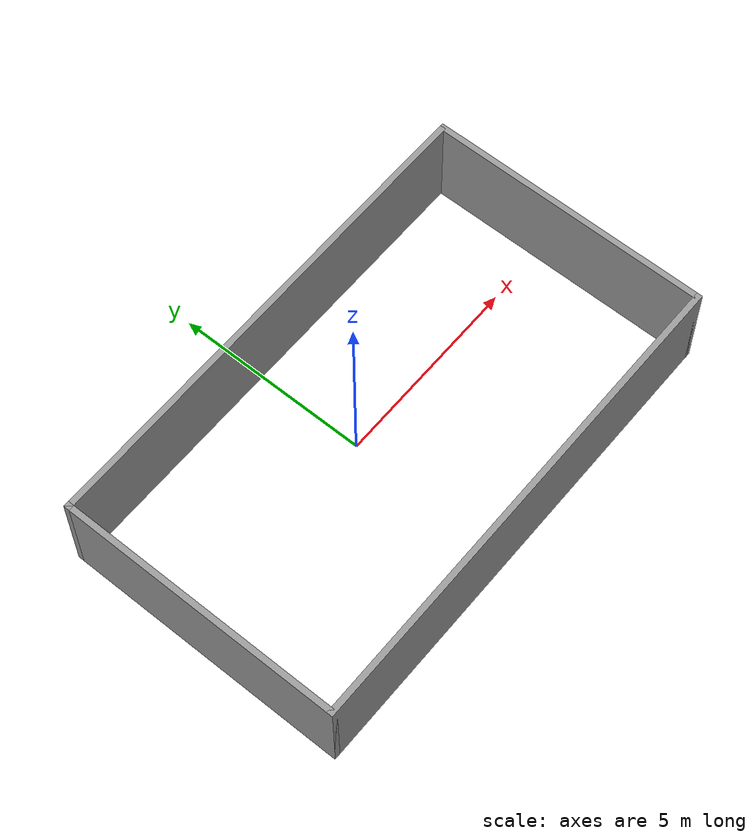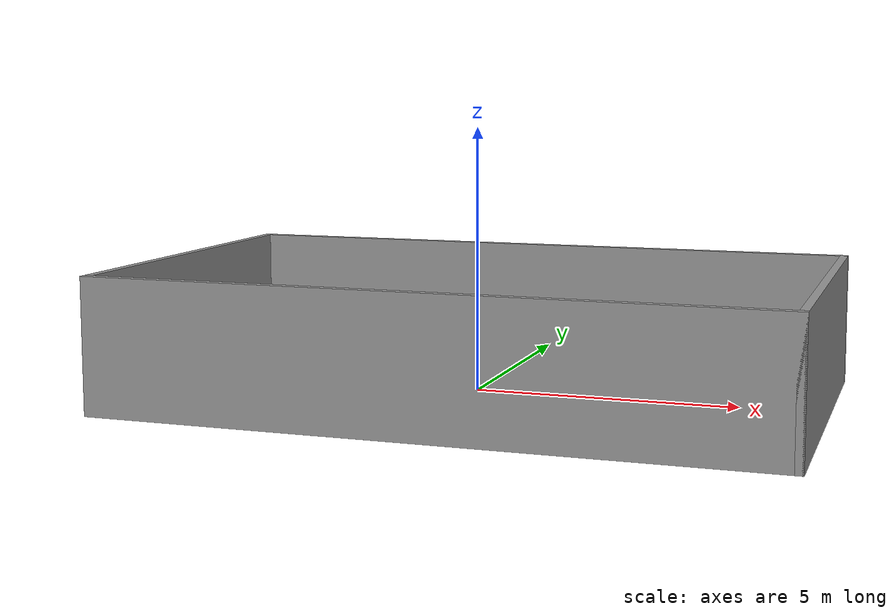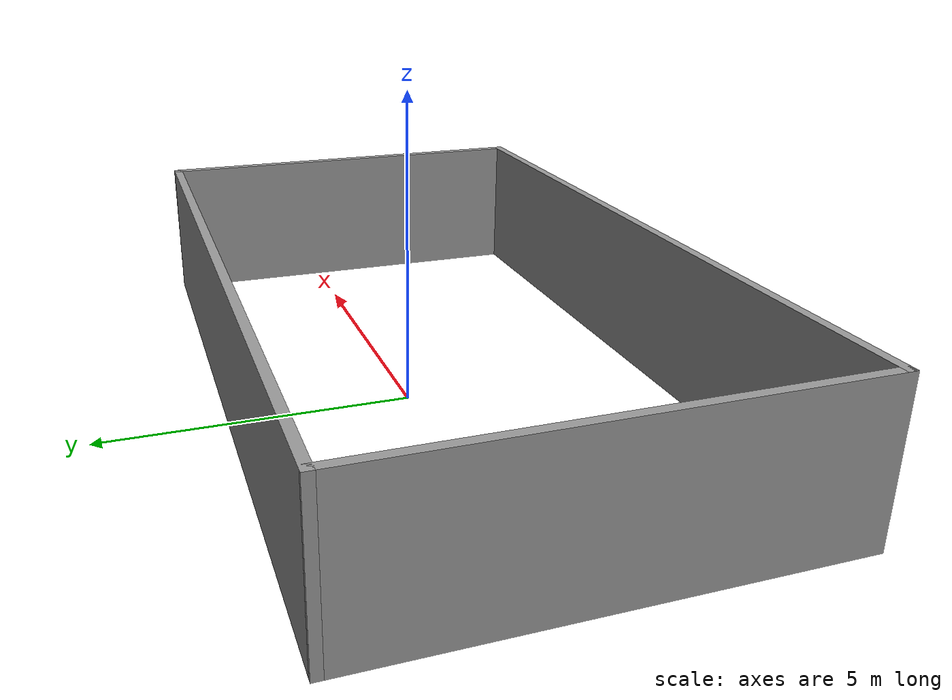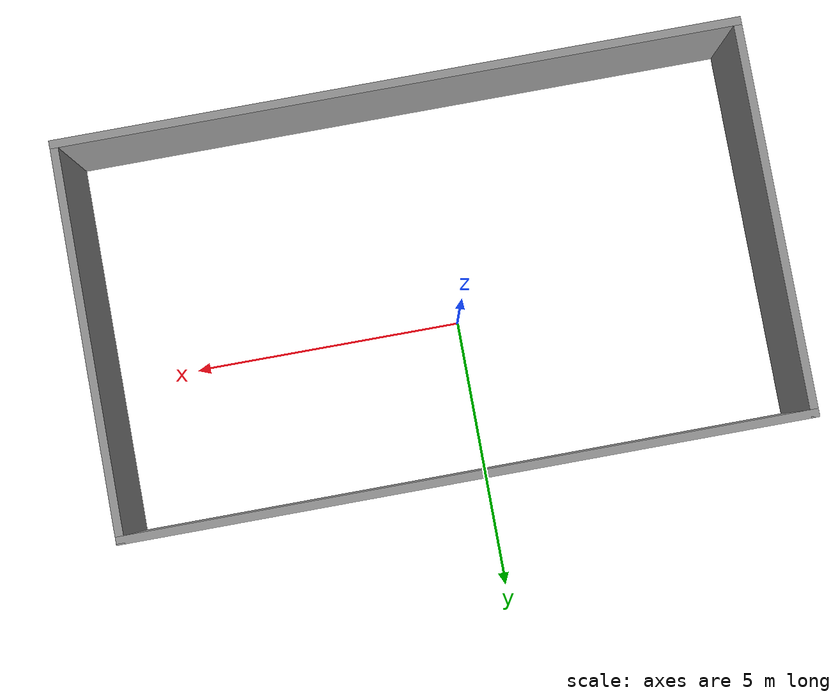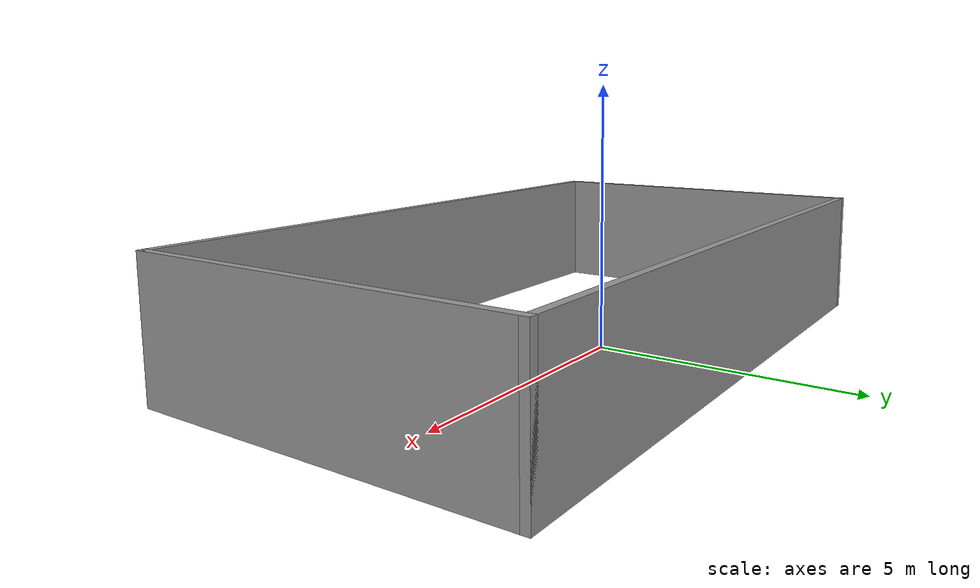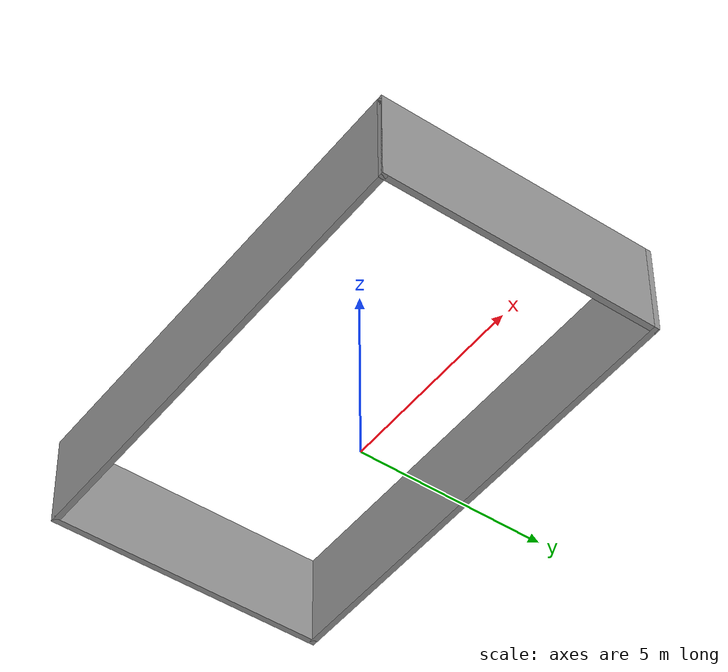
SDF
<?xml version='1.0'?>
<sdf version='1.7'>
  <model name='map0_level0_test'>
    <pose>0.3689 -0.692383 0 0 -0 0</pose>
    <link name='Wall_24'>
      <collision name='Wall_24_Collision'>
        <geometry>
          <box>
            <size>7.25 0.15 2.5</size>
          </box>
        </geometry>
        <pose>0 0 1.25 0 -0 0</pose>
      </collision>
      <visual name='Wall_24_Visual'>
        <pose>0 0 1.25 0 -0 0</pose>
        <geometry>
          <box>
            <size>7.25 0.15 2.5</size>
          </box>
        </geometry>
        <material>
          <script>
            <uri>file://media/materials/scripts/gazebo.material</uri>
            <name>Gazebo/Grey</name>
          </script>
          <ambient>1 1 1 1</ambient>
        </material>
        <meta>
          <layer>0</layer>
        </meta>
      </visual>
      <pose>-6.175 -0 0 0 -0 -1.5708</pose>
    </link>
    <link name='Wall_25'>
      <collision name='Wall_25_Collision'>
        <geometry>
          <box>
            <size>12.5 0.15 2.5</size>
          </box>
        </geometry>
        <pose>0 0 1.25 0 -0 0</pose>
      </collision>
      <visual name='Wall_25_Visual'>
        <pose>0 0 1.25 0 -0 0</pose>
        <geometry>
          <box>
            <size>12.5 0.15 2.5</size>
          </box>
        </geometry>
        <material>
          <script>
            <uri>file://media/materials/scripts/gazebo.material</uri>
            <name>Gazebo/Grey</name>
          </script>
          <ambient>1 1 1 1</ambient>
        </material>
        <meta>
          <layer>0</layer>
        </meta>
      </visual>
      <pose>0 -3.55 0 0 -0 0</pose>
    </link>
    <link name='Wall_26'>
      <collision name='Wall_26_Collision'>
        <geometry>
          <box>
            <size>7.25 0.15 2.5</size>
          </box>
        </geometry>
        <pose>0 0 1.25 0 -0 0</pose>
      </collision>
      <visual name='Wall_26_Visual'>
        <pose>0 0 1.25 0 -0 0</pose>
        <geometry>
          <box>
            <size>7.25 0.15 2.5</size>
          </box>
        </geometry>
        <material>
          <script>
            <uri>file://media/materials/scripts/gazebo.material</uri>
            <name>Gazebo/Grey</name>
          </script>
          <ambient>1 1 1 1</ambient>
        </material>
        <meta>
          <layer>0</layer>
        </meta>
      </visual>
      <pose>6.175 -0 0 0 -0 1.5708</pose>
    </link>
    <link name='Wall_28'>
      <collision name='Wall_28_Collision'>
        <geometry>
          <box>
            <size>12.5 0.15 2.5</size>
          </box>
        </geometry>
        <pose>0 0 1.25 0 -0 0</pose>
      </collision>
      <visual name='Wall_28_Visual'>
        <pose>0 0 1.25 0 -0 0</pose>
        <geometry>
          <box>
            <size>12.5 0.15 2.5</size>
          </box>
        </geometry>
        <material>
          <script>
            <uri>file://media/materials/scripts/gazebo.material</uri>
            <name>Gazebo/Grey</name>
          </script>
          <ambient>1 1 1 1</ambient>
        </material>
        <meta>
          <layer>0</layer>
        </meta>
      </visual>
      <pose>0 3.55 0 0 -0 0</pose>
    </link>
    <static>1</static>
  </model>
</sdf>
